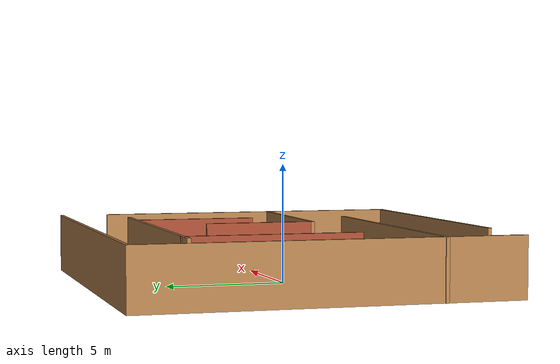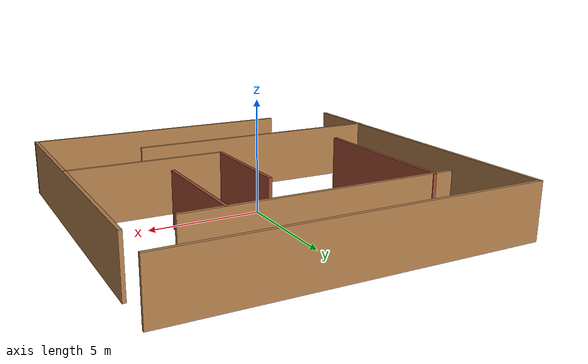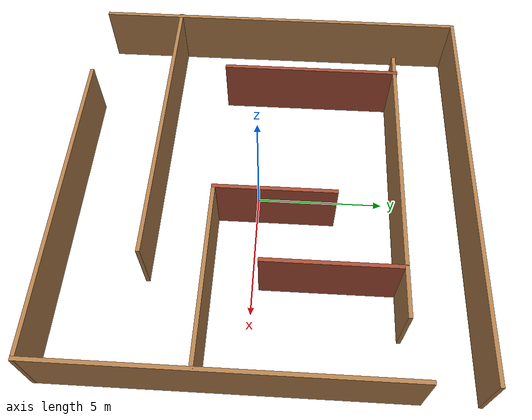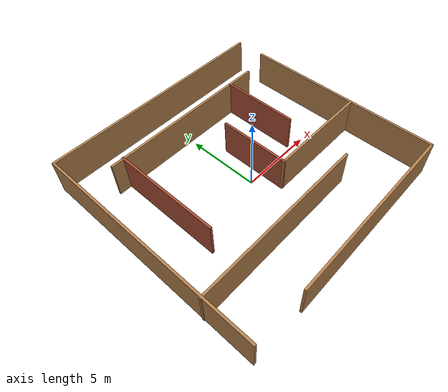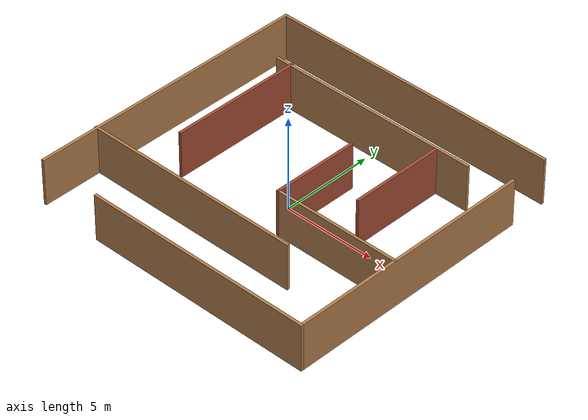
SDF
<?xml version='1.0'?>
<sdf version='1.7'>
  <model name='maze'>
    <pose>-0.106834 0.387097 0 0 -0 0</pose>
    <link name='Wall_13'>
      <collision name='Wall_13_Collision'>
        <geometry>
          <box>
            <size>13.5 0.15 2.5</size>
          </box>
        </geometry>
        <pose>0 0 1.25 0 -0 0</pose>
      </collision>
      <visual name='Wall_13_Visual'>
        <pose>0 0 1.25 0 -0 0</pose>
        <geometry>
          <box>
            <size>13.5 0.15 2.5</size>
          </box>
        </geometry>
        <material>
          <script>
            <uri>file://media/materials/scripts/gazebo.material</uri>
            <name>Gazebo/Wood</name>
          </script>
          <ambient>1 1 1 1</ambient>
        </material>
        <meta>
          <layer>0</layer>
        </meta>
      </visual>
      <pose>7.95747 -1.05965 0 0 -0 -1.5708</pose>
    </link>
    <link name='Wall_14'>
      <collision name='Wall_14_Collision'>
        <geometry>
          <box>
            <size>12.5 0.15 2.5</size>
          </box>
        </geometry>
        <pose>0 0 1.25 0 -0 0</pose>
      </collision>
      <visual name='Wall_14_Visual'>
        <pose>0 0 1.25 0 -0 0</pose>
        <geometry>
          <box>
            <size>12.5 0.15 2.5</size>
          </box>
        </geometry>
        <material>
          <script>
            <uri>file://media/materials/scripts/gazebo.material</uri>
            <name>Gazebo/Wood</name>
          </script>
          <ambient>1 1 1 1</ambient>
        </material>
        <meta>
          <layer>0</layer>
        </meta>
      </visual>
      <pose>1.78247 -7.73465 0 0 -0 3.14159</pose>
    </link>
    <link name='Wall_16'>
      <collision name='Wall_16_Collision'>
        <geometry>
          <box>
            <size>11.75 0.15 2.5</size>
          </box>
        </geometry>
        <pose>0 0 1.25 0 -0 0</pose>
      </collision>
      <visual name='Wall_16_Visual'>
        <pose>0 0 1.25 0 -0 0</pose>
        <geometry>
          <box>
            <size>11.75 0.15 2.5</size>
          </box>
        </geometry>
        <material>
          <script>
            <uri>file://media/materials/scripts/gazebo.material</uri>
            <name>Gazebo/Wood</name>
          </script>
          <ambient>1 1 1 1</ambient>
        </material>
        <meta>
          <layer>0</layer>
        </meta>
      </visual>
      <pose>0.014797 5.03689 0 0 -0 0</pose>
    </link>
    <link name='Wall_18'>
      <collision name='Wall_18_Collision'>
        <geometry>
          <box>
            <size>12 0.15 2.5</size>
          </box>
        </geometry>
        <pose>0 0 1.25 0 -0 0</pose>
      </collision>
      <visual name='Wall_18_Visual'>
        <pose>0 0 1.25 0 -0 0</pose>
        <geometry>
          <box>
            <size>12 0.15 2.5</size>
          </box>
        </geometry>
        <material>
          <script>
            <uri>file://media/materials/scripts/gazebo.material</uri>
            <name>Gazebo/Wood</name>
          </script>
          <ambient>1 1 1 1</ambient>
        </material>
        <meta>
          <layer>0</layer>
        </meta>
      </visual>
      <pose>-2.03247 -4.37626 0 0 -0 0</pose>
    </link>
    <link name='Wall_20'>
      <collision name='Wall_20_Collision'>
        <geometry>
          <box>
            <size>7 0.15 2.5</size>
          </box>
        </geometry>
        <pose>0 0 1.25 0 -0 0</pose>
      </collision>
      <visual name='Wall_20_Visual'>
        <pose>0 0 1.25 0 -0 0</pose>
        <geometry>
          <box>
            <size>7 0.15 2.5</size>
          </box>
        </geometry>
        <material>
          <script>
            <uri>file://media/materials/scripts/gazebo.material</uri>
            <name>Gazebo/Wood</name>
          </script>
          <ambient>1 1 1 1</ambient>
        </material>
        <meta>
          <layer>0</layer>
        </meta>
      </visual>
      <pose>4.50725 -2.00286 0 0 -0 3.14159</pose>
    </link>
    <link name='Wall_21'>
      <collision name='Wall_21_Collision'>
        <geometry>
          <box>
            <size>4.75 0.15 2.5</size>
          </box>
        </geometry>
        <pose>0 0 1.25 0 -0 0</pose>
      </collision>
      <visual name='Wall_21_Visual'>
        <pose>0 0 1.25 0 -0 0</pose>
        <geometry>
          <box>
            <size>4.75 0.15 2.5</size>
          </box>
        </geometry>
        <material>
          <script>
            <uri>file://media/materials/scripts/gazebo.material</uri>
            <name>Gazebo/Bricks</name>
          </script>
          <ambient>1 1 1 1</ambient>
        </material>
        <meta>
          <layer>0</layer>
        </meta>
      </visual>
      <pose>1.08225 0.297139 0 0 -0 1.5708</pose>
    </link>
    <link name='Wall_23'>
      <collision name='Wall_23_Collision'>
        <geometry>
          <box>
            <size>7.25 0.15 2.5</size>
          </box>
        </geometry>
        <pose>0 0 1.25 0 -0 0</pose>
      </collision>
      <visual name='Wall_23_Visual'>
        <pose>0 0 1.25 0 -0 0</pose>
        <geometry>
          <box>
            <size>7.25 0.15 2.5</size>
          </box>
        </geometry>
        <material>
          <script>
            <uri>file://media/materials/scripts/gazebo.material</uri>
            <name>Gazebo/Bricks</name>
          </script>
          <ambient>1 1 1 1</ambient>
        </material>
        <meta>
          <layer>0</layer>
        </meta>
      </visual>
      <pose>-4.98066 1.52712 0 0 -0 -1.5708</pose>
    </link>
    <link name='Wall_25'>
      <collision name='Wall_25_Collision'>
        <geometry>
          <box>
            <size>5.25 0.15 2.5</size>
          </box>
        </geometry>
        <pose>0 0 1.25 0 -0 0</pose>
      </collision>
      <visual name='Wall_25_Visual'>
        <pose>0 0 1.25 0 -0 0</pose>
        <geometry>
          <box>
            <size>5.25 0.15 2.5</size>
          </box>
        </geometry>
        <material>
          <script>
            <uri>file://media/materials/scripts/gazebo.material</uri>
            <name>Gazebo/Bricks</name>
          </script>
          <ambient>1 1 1 1</ambient>
        </material>
        <meta>
          <layer>0</layer>
        </meta>
      </visual>
      <pose>4.03022 2.48689 0 0 -0 -1.5708</pose>
    </link>
    <link name='Wall_8'>
      <collision name='Wall_8_Collision'>
        <geometry>
          <box>
            <size>15.5 0.15 2.5</size>
          </box>
        </geometry>
        <pose>0 0 1.25 0 -0 0</pose>
      </collision>
      <visual name='Wall_8_Visual'>
        <pose>0 0 1.25 0 -0 0</pose>
        <geometry>
          <box>
            <size>15.5 0.15 2.5</size>
          </box>
        </geometry>
        <material>
          <script>
            <uri>file://media/materials/scripts/gazebo.material</uri>
            <name>Gazebo/Wood</name>
          </script>
          <ambient>1 1 1 1</ambient>
        </material>
        <meta>
          <layer>0</layer>
        </meta>
      </visual>
      <pose>-7.91013 0.059646 0 0 -0 1.5708</pose>
    </link>
    <link name='Wall_9'>
      <collision name='Wall_9_Collision'>
        <geometry>
          <box>
            <size>16 0.15 2.5</size>
          </box>
        </geometry>
        <pose>0 0 1.25 0 -0 0</pose>
      </collision>
      <visual name='Wall_9_Visual'>
        <pose>0 0 1.25 0 -0 0</pose>
        <geometry>
          <box>
            <size>16 0.15 2.5</size>
          </box>
        </geometry>
        <material>
          <script>
            <uri>file://media/materials/scripts/gazebo.material</uri>
            <name>Gazebo/Wood</name>
          </script>
          <ambient>1 1 1 1</ambient>
        </material>
        <meta>
          <layer>0</layer>
        </meta>
      </visual>
      <pose>0.014872 7.73465 0 0 -0 0</pose>
    </link>
    <static>1</static>
  </model>
</sdf>
